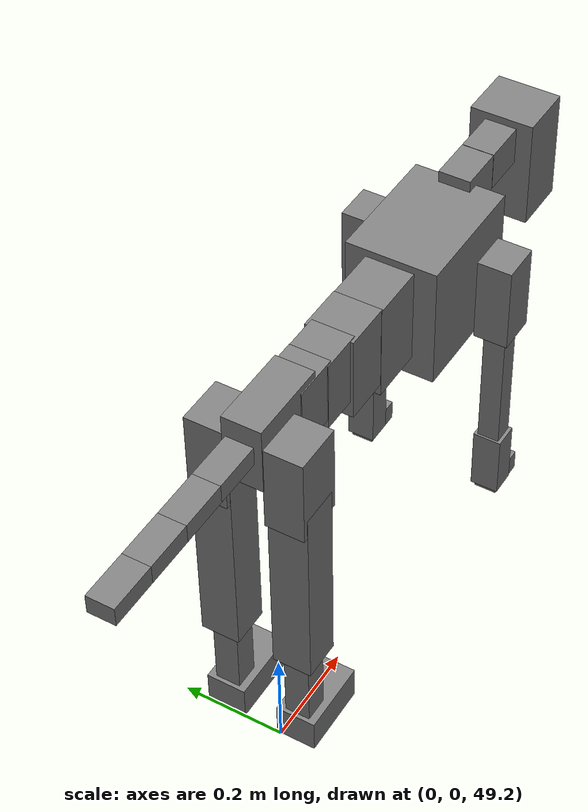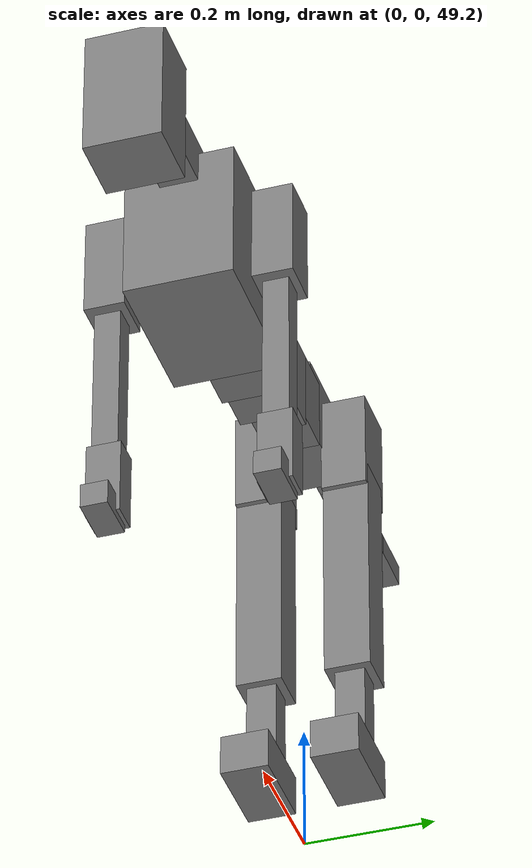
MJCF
<mujoco model="dog">

    <default>
        <joint armature="0.02" stiffness="1" damping="0.2" limited="true"/>
        <geom condim="3" friction="1 0.05 0.05" margin="0.01"/>
        <motor ctrllimited="true" ctrlrange="-1.0 1.0" forcelimited="true" gear="50"/>
    </default>

    <compiler inertiafromgeom="true" angle="radian"/>

    <option timestep="0.016" iterations="50" tolerance="1e-10" solver="Newton" jacobian="dense" cone="pyramidal"/>

    <size nconmax="20000" njmax="60000" nstack="5000000"/>
    <visual>
        <map force="0.1" zfar="30"/>
        <rgba haze="0.15 0.25 0.35 1"/>
        <quality shadowsize="2048"/>
        <global offwidth="800" offheight="800"/>
    </visual>

    <asset>
        <texture type="skybox" builtin="gradient" rgb1="0.3 0.5 0.7" rgb2="0 0 0" width="512" height="512"/>
        <texture name="texplane" type="2d" builtin="checker" rgb1=".2 .3 .4" rgb2=".1 0.15 0.2" width="512" height="512"
                 mark="cross" markrgb=".8 .8 .8"/>
        <texture name="texgeom" type="cube" builtin="flat" mark="cross" width="127" height="1278" rgb1="0.8 0.6 0.4"
                 rgb2="0.8 0.6 0.4" markrgb="1 1 1" random="0.01"/>

        <material name="matplane" reflectance="0.3" texture="texplane" texrepeat="1 1" texuniform="true"/>
        <material name="matgeom" texture="texgeom" texuniform="true" rgba="0.8 0.6 .4 1"/>
    </asset>

    <worldbody>
        <geom name="floor" pos="0 0 0" size="0 0 .25" type="plane" material="matplane" condim="3"/>

        <light directional="false" diffuse=".2 .2 .2" specular="0 0 0" pos="0 0 5" dir="0 0 -1" castshadow="false"/>
        <light mode="targetbodycom" target="torso" directional="false" diffuse=".8 .8 .8" specular="0.3 0.3 0.3"
               pos="0 0 4.0" dir="0 0 -1"/>

        <body name="root" pos="0 0 50">
            <freejoint name="root_1"/>
            <geom type="box" pos="0 0 -0.02" size="0.0774  0.0358  0.063" density="2030"/>

            <body name="spine1" pos="0.054 0 0">
                <joint name="spine1_y" axis="0 1 0" range="0 0.7" limited="true"/>
                <geom type="box" pos="0.02375 0 -0.03" size="0.04375  0.0375  0.05985" density="2030"/>

                <body name="spine2" pos="0.0612 0 0">
                    <joint name="spine2_y" axis="0 1 0" range="-0.15 0.15" limited="true"/>
                    <geom type="box" pos="0.03555  0  -0.04" size="0.04055  0.039  0.06615" density="2030"/>

                    <body name="spine3" pos="0.0730 0 0">
                        <joint name="spine3_y" axis="0 1 0" range="-0.15 0.15" limited="true"/>
                        <geom type="box" pos="0.03555  0  -0.057" size="0.04555  0.0445  0.081" density="2030"/>

                        <body name="spine4" pos="0.0780 0 0">
                            <joint name="spine4_y" axis="0 1 0" range="-0.15 0.15" limited="true"/>
                            <geom type="box" pos="0.05265  0  -0.07" size="0.05265  0.045  0.09135" density="2030"/>

                            <body name="torso" pos="0.1082 0 0">
                                <joint name="torso_y" axis="0 1 0" range="-0.15 0.15" limited="true"/>
                                <geom type="box" pos="0.11925  0  -0.085" size="0.11925  0.085  0.11745"
                                      density="2030"/>

                                <body name="neck1" pos="0.2160  0   0.0180">
                                    <joint name="neck1_y" axis="0 1 0" range="-1.2  -1" limited="true"/>
                                    <geom type="box" pos="0.0423  0  0" size="0.0423  0.03  0.036" density="2325"/>

                                    <body name="neck2" pos="0.0853  0  0">
                                        <joint name="neck2_y" axis="0 1 0" range="0.1  0" limited="true"/>
                                        <geom type="box" pos="0.0423  0  0" size="0.0423  0.03  0.036" density="2325"/>

                                        <body name="head" pos="0.0853  0  0">
                                            <joint name="head_y" axis="0 1 0" range="-0.3  -0.2" limited="true"/>
                                            <geom type="box" pos="0.0531  0  -0.055" size="0.0531  0.06  0.1044"
                                                  density="4030"/>

                                        </body>
                                    </body>
                                </body>

                                <body name="front_shoulder" pos="0.156  0   -0.0480">
                                    <joint name="front_shoulder_y" axis="0 1 0" range="-1 1.5" limited="true"/>
                                    <geom type="box" pos="0 0.13 -0.0544" size="0.0370  0.0316  0.0811" density="1158"/>
                                    <geom type="box" pos="0 -0.13 -0.0544" size="0.0370  0.0316  0.0811"
                                          density="1158"/>

                                    <body name="front_elbow" pos="0  0  -0.1088">
                                        <joint name="front_elbow_y" axis="0 1 0" range="-2 0" limited="true"/>
                                        <geom type="box" pos="0 0.13 -0.1432" size="0.0198  0.0203  0.1432"
                                              density="1081"/>
                                        <geom type="box" pos="0 -0.13 -0.1432" size="0.0198  0.0203  0.1432"
                                              density="1081"/>

                                        <body name="front_wrist" pos="0  0  -0.2863">
                                            <joint name="front_wrist_y" axis="0 1 0" range="-0.2 0" limited="true"/>
                                            <geom type="box" pos="0 0.13 -0.0486" size="0.0239  0.0266  0.0617"
                                                  density="1664"/>
                                            <geom type="box" pos="0 -0.13 -0.0486" size="0.0239  0.0266  0.0617"
                                                  density="1664"/>

                                            <body name="front_finger_end" pos="0  0  -0.0972">
                                                <joint name="front_finger_y" axis="0 1 0" range="-0.4 1"
                                                       limited="true"/>
                                                <geom type="box" pos="0.0209  0.13  -0.0048"
                                                      size="0.0384  0.0209  0.0198" density="1515"/>
                                                <geom type="box" pos="0.0209  -0.13  -0.0048"
                                                      size="0.0384  0.0209  0.0198" density="1515"/>

                                            </body>

                                        </body>
                                    </body>
                                </body>

                            </body>
                        </body>
                    </body>
                </body>
            </body>

            <body name="back_hip" pos="-0.03 0 -0.018">
                <joint name="back_hip_y" axis="0 1 0" range="-1.5 0.3" limited="true"/>
                <geom type="box" pos="0 0.07 -0.0596" size="0.0457  0.0358  0.0824" density="1154"/>
                <geom type="box" pos="0 -0.07 -0.0596" size="0.0457  0.0358  0.0824" density="1154"/>

                <body name="back_knee" pos="0  0  -0.1191">
                    <joint name="back_knee_y" axis="0 1 0" range="0 2.8" limited="true"/>
                    <geom type="box" pos="0 0.07 -0.1718" size="0.0368  0.0362  0.1873" density="1227"/>
                    <geom type="box" pos="0 -0.07 -0.1718" size="0.0368  0.0362  0.1873" density="1227"/>

                    <body name="back_ankle" pos="0  0  -0.3435">
                        <joint name="back_ankle_y" axis="0 1 0" range="-2.2 0" limited="true"/>
                        <geom type="box" pos="0 0.07 -0.0851" size="0.0235  0.0235  0.0963" density="1284"/>
                        <geom type="box" pos="0 -0.07 -0.0851" size="0.0235  0.0235  0.0963" density="1284"/>

                        <body name="back_toe_end" pos="0  0  -0.1701">
                            <joint name="back_toe_y" axis="0 1 0" range="-0.4 1" limited="true"/>
                            <geom type="box" pos="0.0373  0.07  -0.0175" size="0.0684  0.0373  0.0325" density="1515"/>
                            <geom type="box" pos="0.0373  -0.07  -0.0175" size="0.0684  0.0373  0.0325" density="1515"/>

                        </body>
                    </body>
                </body>
            </body>

            <body name="tail1" pos="-0.074 0 -0.006">
                <joint name="tail1_y" axis="0 1 0" range="-0.2 0.2" limited="true"/>
                <geom type="box" pos="-0.0536  0  0" size="0.045  0.025  0.0175" density="1587"/>

                <body name="tail2" pos="-0.09 0 0">
                    <joint name="tail2_y" axis="0 1 0" range="-0.2 0.2" limited="true"/>
                    <geom type="box" pos="-0.0536  0  0" size="0.045  0.025  0.0175" density="1587"/>

                    <body name="tail3" pos="-0.09 0 0">
                        <joint name="tail3_y" axis="0 1 0" range="-0.2 0.2" limited="true"/>
                        <geom type="box" pos="-0.0536  0  0" size="0.045  0.025  0.0175" density="1587"/>

                        <body name="tail4" pos="-0.09 0 0">
                            <joint name="tail4_y" axis="0 1 0" range="-0.2 0.2" limited="true"/>
                            <geom type="box" pos="-0.0536  0  0" size="0.045  0.025  0.0175" density="1587"/>

                        </body>
                    </body>
                </body>
            </body>
        </body>
    </worldbody>

    <actuator>
        <motor joint="spine1_y" forcerange="-150 150     "/>
        <motor joint="spine2_y" forcerange="-150 150     "/>
        <motor joint="spine3_y" forcerange="-150 150     "/>
        <motor joint="spine4_y" forcerange="-150 150     "/>
        <motor joint="torso_y" forcerange="-150 150     "/>
        <motor joint="neck1_y" forcerange="-100 100       "/>
        <motor joint="neck2_y" forcerange="-100 100       "/>
        <motor joint="head_y" forcerange="-150 150       "/>
        <motor joint="front_shoulder_y" forcerange="-182.93 127.94"/>
        <motor joint="front_elbow_y" forcerange="-104.18 143.31"/>
        <motor joint="front_wrist_y" forcerange="-145.18 67.32"/>
        <motor joint="front_finger_y" forcerange="-30.26 41.44"/>
        <motor joint="back_hip_y" forcerange="-280.36 397.58"/>
        <motor joint="back_knee_y" forcerange="-351.82 375.21"/>
        <motor joint="back_angle_y" forcerange="-118.29 157.36"/>
        <motor joint="back_toe_y" forcerange="-133.47 84.93"/>
        <motor joint="tail1_y" forcerange="-50 50     "/>
        <motor joint="tail2_y" forcerange="-50 50     "/>
        <motor joint="tail3_y" forcerange="-50 50     "/>
        <motor joint="tail4_y" forcerange="-50 50     "/>
    </actuator>
</mujoco>
